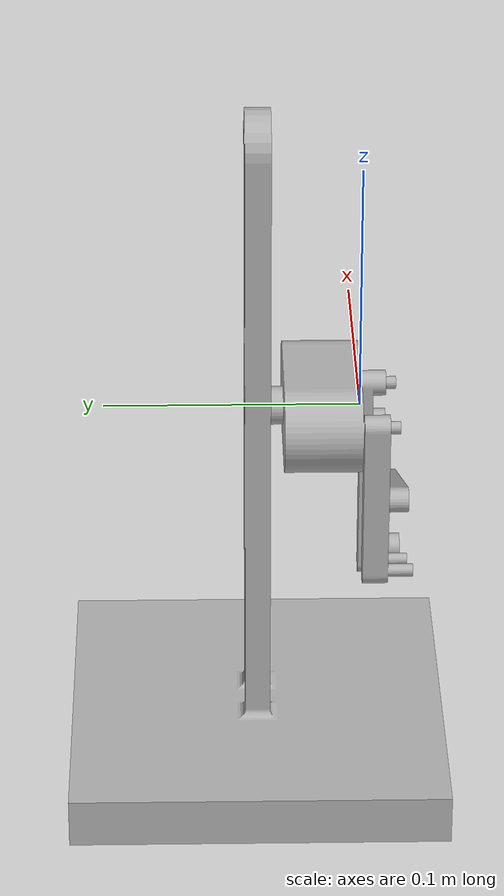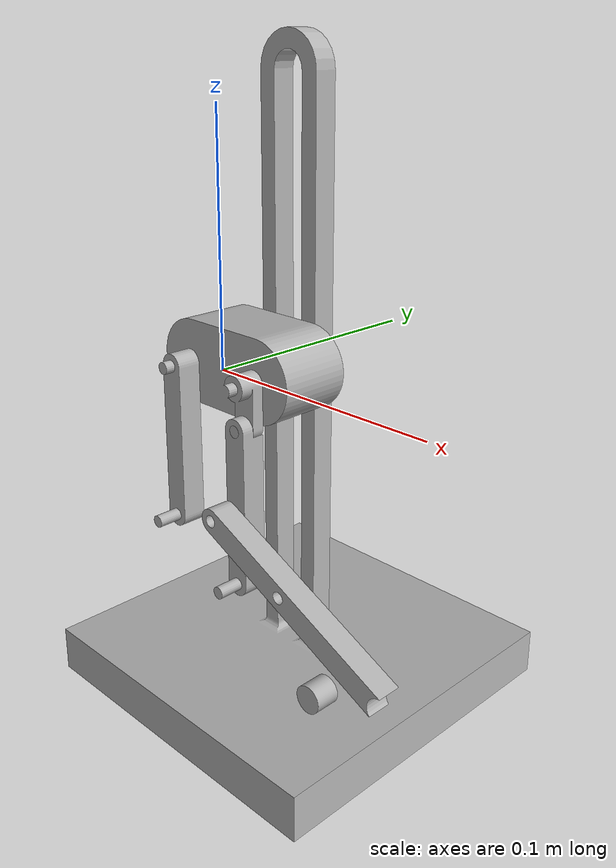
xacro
<?xml version="1.0" ?>
<robot name="leg_urdf_4" xmlns:xacro="http://www.ros.org/wiki/xacro">

<xacro:include filename="$(find leg_urdf_4_description)/urdf/materials.xacro" />
<xacro:include filename="$(find leg_urdf_4_description)/urdf/leg_urdf_4.trans" />
<xacro:include filename="$(find leg_urdf_4_description)/urdf/leg_urdf_4.gazebo" />
<link name="base_link">
  <inertial>
    <origin xyz="2.6062248538171926e-14 0.015682708513881167 0.00991081646051718" rpy="0 0 0"/>
    <mass value="0.5333791624793176"/>
    <inertia ixx="9.5e-05" iyy="0.000224" izz="0.000231" ixy="-0.0" iyz="-0.0" ixz="-0.0"/>
  </inertial>
  <visual>
    <origin xyz="0 0 0" rpy="0 0 0"/>
    <geometry>
      <mesh filename="package://leg_urdf_4_description/meshes/base_link.stl" scale="0.001 0.001 0.001"/>
    </geometry>
    <material name="silver"/>
  </visual>
  <collision>
    <origin xyz="0 0 0" rpy="0 0 0"/>
    <geometry>
      <mesh filename="package://leg_urdf_4_description/meshes/base_link.stl" scale="0.001 0.001 0.001"/>
    </geometry>
  </collision>
</link>

<link name="leg_stand_1">
  <inertial>
    <origin xyz="4.866526231562318e-17 -0.0050000000000000044 -0.15403119365761678" rpy="0 0 0"/>
    <mass value="3.843019513722716"/>
    <inertia ixx="0.014188" iyy="0.014225" izz="0.013289" ixy="0.0" iyz="-0.0" ixz="-0.0"/>
  </inertial>
  <visual>
    <origin xyz="-0.0 -0.045 -0.020402" rpy="0 0 0"/>
    <geometry>
      <mesh filename="package://leg_urdf_4_description/meshes/leg_stand_1.stl" scale="0.001 0.001 0.001"/>
    </geometry>
    <material name="silver"/>
  </visual>
  <collision>
    <origin xyz="-0.0 -0.045 -0.020402" rpy="0 0 0"/>
    <geometry>
      <mesh filename="package://leg_urdf_4_description/meshes/leg_stand_1.stl" scale="0.001 0.001 0.001"/>
    </geometry>
  </collision>
</link>

<joint name="leg_stand_slider" type="prismatic">
  <origin xyz="0.0 0.045 0.020402" rpy="0 0 0"/>
  <parent link="base_link"/>
  <child link="leg_stand_1"/>
  <axis xyz="-0.0 -0.0 -1.0"/>
  <limit upper="0.0" lower="0.0" effort="100" velocity="100"/>
</joint>

<link name="link_2_1">
  <inertial>
    <origin xyz="0.005536924922540794 0.00872730738440617 -0.04356902457668483" rpy="0 0 0"/>
    <mass value="0.05652312558266997"/>
    <inertia ixx="2.4e-05" iyy="2.5e-05" izz="2e-06" ixy="0.0" iyz="-0.0" ixz="4e-06"/>
  </inertial>
  <visual>
    <origin xyz="0.0185 0.015 -0.0201" rpy="0 0 0"/>
    <geometry>
      <mesh filename="package://leg_urdf_4_description/meshes/link_2_1.stl" scale="0.001 0.001 0.001"/>
    </geometry>
    <material name="silver"/>
  </visual>
  <collision>
    <origin xyz="0.0185 0.015 -0.0201" rpy="0 0 0"/>
    <geometry>
      <mesh filename="package://leg_urdf_4_description/meshes/link_2_1.stl" scale="0.001 0.001 0.001"/>
    </geometry>
  </collision>
</link>

<joint name="motor_link2" type="continuous">
  <origin xyz="-0.0185 -0.015 0.0201" rpy="0 0 0"/>
  <parent link="base_link"/>
  <child link="link_2_1"/>
  <axis xyz="0.0 -1.0 0.0"/>
</joint>

<link name="link_3_1">
  <inertial>
    <origin xyz="-0.006734007594069273 0.010222700020394227 -0.014439992152910322" rpy="0 0 0"/>
    <mass value="0.01206720363483619"/>
    <inertia ixx="0.0" iyy="1e-06" izz="1e-06" ixy="0.0" iyz="0.0" ixz="-0.0"/>
  </inertial>
  <visual>
    <origin xyz="-0.0185 0.015 -0.0201" rpy="0 0 0"/>
    <geometry>
      <mesh filename="package://leg_urdf_4_description/meshes/link_3_1.stl" scale="0.001 0.001 0.001"/>
    </geometry>
    <material name="silver"/>
  </visual>
  <collision>
    <origin xyz="-0.0185 0.015 -0.0201" rpy="0 0 0"/>
    <geometry>
      <mesh filename="package://leg_urdf_4_description/meshes/link_3_1.stl" scale="0.001 0.001 0.001"/>
    </geometry>
  </collision>
</link>

<joint name="motor_link3" type="continuous">
  <origin xyz="0.0185 -0.015 0.0201" rpy="0 0 0"/>
  <parent link="base_link"/>
  <child link="link_3_1"/>
  <axis xyz="0.0 -1.0 0.0"/>
</joint>

<link name="link_4_1">
  <inertial>
    <origin xyz="0.008057212512757617 0.005595836589149327 -0.05365210897196092" rpy="0 0 0"/>
    <mass value="0.05406570006587846"/>
    <inertia ixx="1.8e-05" iyy="2.2e-05" izz="5e-06" ixy="0.0" iyz="-0.0" ixz="8e-06"/>
  </inertial>
  <visual>
    <origin xyz="-0.011804 0.012 -0.022684" rpy="0 0 0"/>
    <geometry>
      <mesh filename="package://leg_urdf_4_description/meshes/link_4_1.stl" scale="0.001 0.001 0.001"/>
    </geometry>
    <material name="silver"/>
  </visual>
  <collision>
    <origin xyz="-0.011804 0.012 -0.022684" rpy="0 0 0"/>
    <geometry>
      <mesh filename="package://leg_urdf_4_description/meshes/link_4_1.stl" scale="0.001 0.001 0.001"/>
    </geometry>
  </collision>
</link>

<joint name="link3_link4" type="continuous">
  <origin xyz="-0.006696 0.003 0.002584" rpy="0 0 0"/>
  <parent link="link_3_1"/>
  <child link="link_4_1"/>
  <axis xyz="0.0 -1.0 0.0"/>
</joint>

<link name="link_5_1">
  <inertial>
    <origin xyz="0.03551733138842604 0.005999999999999981 -0.016422953184142594" rpy="0 0 0"/>
    <mass value="0.07096599286208412"/>
    <inertia ixx="2e-06" iyy="5.3e-05" izz="5.2e-05" ixy="0.0" iyz="0.0" ixz="4e-06"/>
  </inertial>
  <visual>
    <origin xyz="-0.000549 0.022 0.04075" rpy="0 0 0"/>
    <geometry>
      <mesh filename="package://leg_urdf_4_description/meshes/link_5_1.stl" scale="0.001 0.001 0.001"/>
    </geometry>
    <material name="silver"/>
  </visual>
  <collision>
    <origin xyz="-0.000549 0.022 0.04075" rpy="0 0 0"/>
    <geometry>
      <mesh filename="package://leg_urdf_4_description/meshes/link_5_1.stl" scale="0.001 0.001 0.001"/>
    </geometry>
  </collision>
</link>

<link name="ground_contact_1">
  <inertial>
    <origin xyz="-4.46711191051663e-07 0.004999999999999977 -3.5851385381258094e-07" rpy="0 0 0"/>
    <mass value="0.00746010445503068"/>
    <inertia ixx="0.0" iyy="0.0" izz="0.0" ixy="0.0" iyz="0.0" ixz="0.0"/>
  </inertial>
  <visual>
    <origin xyz="-0.086653 0.021 0.061516" rpy="0 0 0"/>
    <geometry>
      <mesh filename="package://leg_urdf_4_description/meshes/ground_contact_1.stl" scale="0.001 0.001 0.001"/>
    </geometry>
    <material name="silver"/>
  </visual>
  <collision>
    <origin xyz="-0.086653 0.021 0.061516" rpy="0 0 0"/>
    <geometry>
      <mesh filename="package://leg_urdf_4_description/meshes/ground_contact_1.stl" scale="0.001 0.001 0.001"/>
    </geometry>
  </collision>
</link>

<joint name="Rigid 8" type="fixed">
  <origin xyz="0.052351 0.001 -0.03325" rpy="0 0 0"/>
  <parent link="link_5_1"/>
  <child link="ground_contact_1"/>
</joint>

<joint name="Revolute 6" type="continuous">
  <origin xyz="0.052802 -0.007 -0.048366" rpy="0 0 0"/>
  <parent link="link_2_1"/>
  <child link="link_5_1"/>
  <axis xyz="-0.0 -1.0 0.0"/>
</joint>

</robot>

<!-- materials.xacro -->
<robot name="leg_urdf_4" xmlns:xacro="http://www.ros.org/wiki/xacro" >

<material name="silver">
  <color rgba="0.700 0.700 0.700 1.000"/>
</material>

</robot>

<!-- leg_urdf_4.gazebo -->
<robot name="leg_urdf_4" xmlns:xacro="http://www.ros.org/wiki/xacro" >

<xacro:property name="body_color" value="Gazebo/Silver" />

<gazebo>
  <plugin name="control" filename="libgazebo_ros_control.so"/>
</gazebo>
<gazebo reference="base_link">
  <material>${body_color}</material>
  <mu1>0.2</mu1>
  <mu2>0.2</mu2>
  <selfCollide>true</selfCollide>
  <gravity>true</gravity>
</gazebo>

<gazebo reference="leg_stand_1">
  <material>${body_color}</material>
  <mu1>0.2</mu1>
  <mu2>0.2</mu2>
  <selfCollide>true</selfCollide>
</gazebo>

<gazebo reference="link_2_1">
  <material>${body_color}</material>
  <mu1>0.2</mu1>
  <mu2>0.2</mu2>
  <selfCollide>true</selfCollide>
</gazebo>

<gazebo reference="link_3_1">
  <material>${body_color}</material>
  <mu1>0.2</mu1>
  <mu2>0.2</mu2>
  <selfCollide>true</selfCollide>
</gazebo>

<gazebo reference="link_4_1">
  <material>${body_color}</material>
  <mu1>0.2</mu1>
  <mu2>0.2</mu2>
  <selfCollide>true</selfCollide>
</gazebo>

<gazebo reference="link_5_1">
  <material>${body_color}</material>
  <mu1>0.2</mu1>
  <mu2>0.2</mu2>
  <selfCollide>true</selfCollide>
</gazebo>

<gazebo reference="link_5_1">
  <material>${body_color}</material>
  <mu1>0.2</mu1>
  <mu2>0.2</mu2>
  <selfCollide>true</selfCollide>
</gazebo>

<gazebo reference="ground_contact_1">
  <material>${body_color}</material>
  <mu1>0.2</mu1>
  <mu2>0.2</mu2>
  <selfCollide>true</selfCollide>
</gazebo>

</robot>
